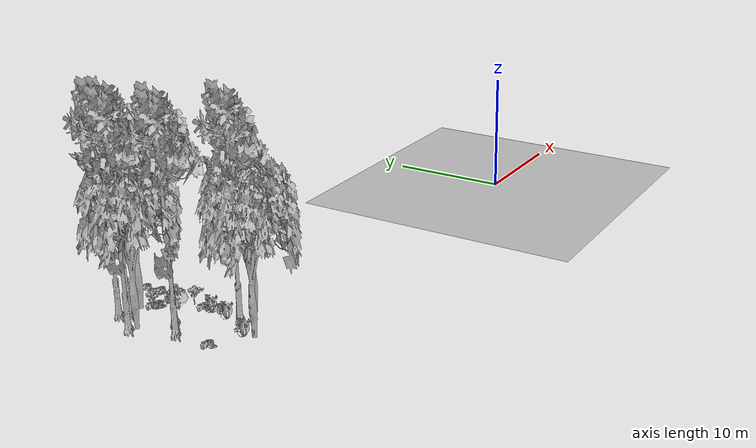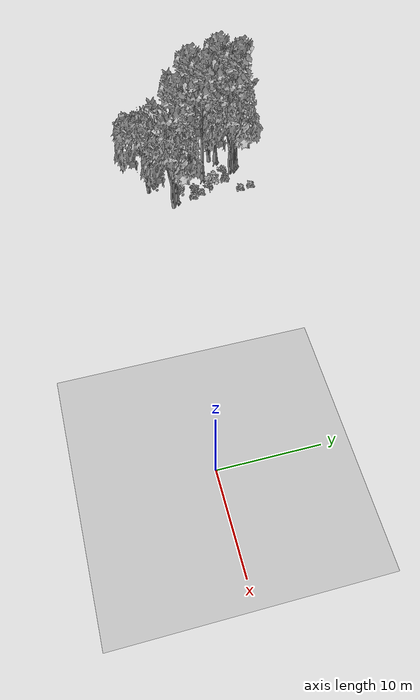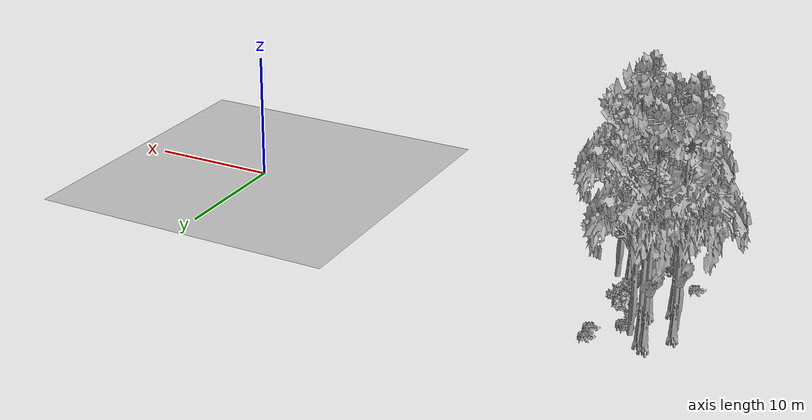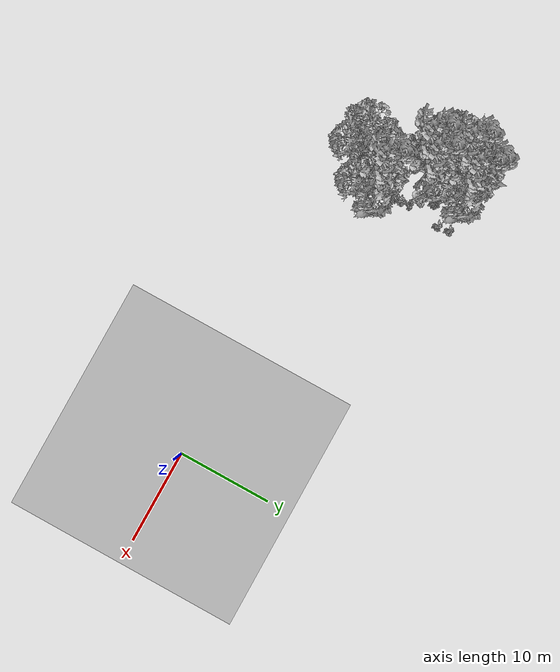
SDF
<sdf version="1.7">
 <world name="default">
  <model name="ground_plane">
   <static>1</static>
   <link name="link">
    <collision name="collision">
     <pose>-50 0 0 0 -0 0</pose>
     <geometry><plane><normal>0 0 1</normal><size>80 80</size></plane></geometry>
     <surface><contact><ode><min_depth>0.01</min_depth><max_vel>0</max_vel></ode></contact></surface>
    </collision>
    <visual name="grass">
     <cast_shadows>0</cast_shadows>
     <geometry>
      <mesh>
       <scale>0.46714285714285714 0.46714285714285714 0.1</scale>
       <uri>file://grass_plane/meshes/grass_plane.dae</uri>
      </mesh>
     </geometry>
    </visual>
   </link>
  </model>
  <model name="Tree 38">
   <static>1</static>
   <pose>-31.90999270987562 3.45453961454475 0 1.57079 -0 0</pose>
   <link name="link">
    <collision name="collision">
     <geometry><mesh><scale>3.5 5 3.5</scale><uri>model://tree_2/meshes/tree_2.obj</uri></mesh></geometry>
    </collision>
    <visual name="visual">
     <geometry><mesh><scale>3.5 5 3.5</scale><uri>model://tree_2/meshes/tree_2.obj</uri></mesh></geometry>
    </visual>
   </link>
  </model>
  <model name="Tree 90">
   <static>1</static>
   <pose>-36.157294848018374 11.546954036844703 0 1.57079 -0 0</pose>
   <link name="link">
    <collision name="collision">
     <geometry><mesh><scale>3.5 5 3.5</scale><uri>model://tree_9/meshes/tree_9.obj</uri></mesh></geometry>
    </collision>
    <visual name="visual">
     <geometry><mesh><scale>3.5 5 3.5</scale><uri>model://tree_9/meshes/tree_9.obj</uri></mesh></geometry>
    </visual>
   </link>
  </model>
  <model name="Tree 165">
   <static>1</static>
   <pose>-35.48497824722461 11.022575793147539 0 1.57079 -0 0</pose>
   <link name="link">
    <collision name="collision">
     <geometry><mesh><scale>3.5 5 3.5</scale><uri>model://tree_2/meshes/tree_2.obj</uri></mesh></geometry>
    </collision>
    <visual name="visual">
     <geometry><mesh><scale>3.5 5 3.5</scale><uri>model://tree_2/meshes/tree_2.obj</uri></mesh></geometry>
    </visual>
   </link>
  </model>
  <model name="Tree 172">
   <static>1</static>
   <pose>-36.82782391081586 6.583129557673729 0 1.57079 -0 0</pose>
   <link name="link">
    <collision name="collision">
     <geometry><mesh><scale>3.5 5 3.5</scale><uri>model://tree_9/meshes/tree_9.obj</uri></mesh></geometry>
    </collision>
    <visual name="visual">
     <geometry><mesh><scale>3.5 5 3.5</scale><uri>model://tree_9/meshes/tree_9.obj</uri></mesh></geometry>
    </visual>
   </link>
  </model>
  <model name="Tree 217">
   <static>1</static>
   <pose>-34.88779400687991 1.2137391682830483 0 1.57079 -0 0</pose>
   <link name="link">
    <collision name="collision">
     <geometry><mesh><scale>3.5 5 3.5</scale><uri>model://tree_2/meshes/tree_2.obj</uri></mesh></geometry>
    </collision>
    <visual name="visual">
     <geometry><mesh><scale>3.5 5 3.5</scale><uri>model://tree_2/meshes/tree_2.obj</uri></mesh></geometry>
    </visual>
   </link>
  </model>
  <model name="Tree 258">
   <static>1</static>
   <pose>-37.973167341716504 9.093760758897282 0 1.57079 -0 0</pose>
   <link name="link">
    <collision name="collision">
     <geometry><mesh><scale>3.5 5 3.5</scale><uri>model://tree_2/meshes/tree_2.obj</uri></mesh></geometry>
    </collision>
    <visual name="visual">
     <geometry><mesh><scale>3.5 5 3.5</scale><uri>model://tree_2/meshes/tree_2.obj</uri></mesh></geometry>
    </visual>
   </link>
  </model>
  <model name="Tree 325">
   <static>1</static>
   <pose>-35.541207736782546 7.756984135357605 0 1.57079 -0 0</pose>
   <link name="link">
    <collision name="collision">
     <geometry><mesh><scale>3.5 5 3.5</scale><uri>model://tree_9/meshes/tree_9.obj</uri></mesh></geometry>
    </collision>
    <visual name="visual">
     <geometry><mesh><scale>3.5 5 3.5</scale><uri>model://tree_9/meshes/tree_9.obj</uri></mesh></geometry>
    </visual>
   </link>
  </model>
  <model name="Tree 336">
   <static>1</static>
   <pose>-36.654256423285204 12.033409033437017 0 1.57079 -0 0</pose>
   <link name="link">
    <collision name="collision">
     <geometry><mesh><scale>3.5 5 3.5</scale><uri>model://tree_9/meshes/tree_9.obj</uri></mesh></geometry>
    </collision>
    <visual name="visual">
     <geometry><mesh><scale>3.5 5 3.5</scale><uri>model://tree_9/meshes/tree_9.obj</uri></mesh></geometry>
    </visual>
   </link>
  </model>
  <model name="Tree 577">
   <static>1</static>
   <pose>-32.84943593047465 4.0637081629017615 0 1.57079 -0 0</pose>
   <link name="link">
    <collision name="collision">
     <geometry><mesh><scale>3.5 5 3.5</scale><uri>model://tree_9/meshes/tree_9.obj</uri></mesh></geometry>
    </collision>
    <visual name="visual">
     <geometry><mesh><scale>3.5 5 3.5</scale><uri>model://tree_9/meshes/tree_9.obj</uri></mesh></geometry>
    </visual>
   </link>
  </model>
  <model name="Tree 592">
   <static>1</static>
   <pose>-37.943336159419424 9.913766005973784 0 1.57079 -0 0</pose>
   <link name="link">
    <collision name="collision">
     <geometry><mesh><scale>3.5 5 3.5</scale><uri>model://tree_9/meshes/tree_9.obj</uri></mesh></geometry>
    </collision>
    <visual name="visual">
     <geometry><mesh><scale>3.5 5 3.5</scale><uri>model://tree_9/meshes/tree_9.obj</uri></mesh></geometry>
    </visual>
   </link>
  </model>
  <model name="Bush 124">
   <static>1</static>
   <pose>-33.39738674514645 6.1826533414260325 0 1.57079 -0 0</pose>
   <link name="link">
    <collision name="collision">
     <geometry><mesh><scale>2 2 2</scale><uri>model://bush_4/meshes/bush_4.obj</uri></mesh></geometry>
     <surface><contact><collide_without_contact>false</collide_without_contact></contact></surface>
    </collision>
    <visual name="visual">
     <geometry><mesh><scale>2 2 2</scale><uri>model://bush_4/meshes/bush_4.obj</uri></mesh></geometry>
    </visual>
   </link>
  </model>
  <model name="Bush 125">
   <static>1</static>
   <pose>-34.26248608032563 8.470265130838385 0 1.57079 -0 0</pose>
   <link name="link">
    <collision name="collision">
     <geometry><mesh><scale>2 2 2</scale><uri>model://bush_1/meshes/bush_1.obj</uri></mesh></geometry>
     <surface><contact><collide_without_contact>false</collide_without_contact></contact></surface>
    </collision>
    <visual name="visual">
     <geometry><mesh><scale>2 2 2</scale><uri>model://bush_1/meshes/bush_1.obj</uri></mesh></geometry>
    </visual>
   </link>
  </model>
  <model name="Bush 146">
   <static>1</static>
   <pose>-33.27144420287954 7.002546705481194 0 1.57079 -0 0</pose>
   <link name="link">
    <collision name="collision">
     <geometry><mesh><scale>2 2 2</scale><uri>model://bush_2/meshes/bush_2.obj</uri></mesh></geometry>
     <surface><contact><collide_without_contact>false</collide_without_contact></contact></surface>
    </collision>
    <visual name="visual">
     <geometry><mesh><scale>2 2 2</scale><uri>model://bush_2/meshes/bush_2.obj</uri></mesh></geometry>
    </visual>
   </link>
  </model>
  <model name="Bush 159">
   <static>1</static>
   <pose>-37.48714730543258 3.1117663217154785 0 1.57079 -0 0</pose>
   <link name="link">
    <collision name="collision">
     <geometry><mesh><scale>2 2 2</scale><uri>model://bush_2/meshes/bush_2.obj</uri></mesh></geometry>
     <surface><contact><collide_without_contact>false</collide_without_contact></contact></surface>
    </collision>
    <visual name="visual">
     <geometry><mesh><scale>2 2 2</scale><uri>model://bush_2/meshes/bush_2.obj</uri></mesh></geometry>
    </visual>
   </link>
  </model>
  <model name="Bush 163">
   <static>1</static>
   <pose>-33.0564425375629 8.026745720699239 0 1.57079 -0 0</pose>
   <link name="link">
    <collision name="collision">
     <geometry><mesh><scale>2 2 2</scale><uri>model://bush_5/meshes/bush_5.obj</uri></mesh></geometry>
     <surface><contact><collide_without_contact>false</collide_without_contact></contact></surface>
    </collision>
    <visual name="visual">
     <geometry><mesh><scale>2 2 2</scale><uri>model://bush_5/meshes/bush_5.obj</uri></mesh></geometry>
    </visual>
   </link>
  </model>
  <model name="Bush 247">
   <static>1</static>
   <pose>-32.83450058459921 11.537960947290038 0 1.57079 -0 0</pose>
   <link name="link">
    <collision name="collision">
     <geometry><mesh><scale>2 2 2</scale><uri>model://bush_2/meshes/bush_2.obj</uri></mesh></geometry>
     <surface><contact><collide_without_contact>false</collide_without_contact></contact></surface>
    </collision>
    <visual name="visual">
     <geometry><mesh><scale>2 2 2</scale><uri>model://bush_2/meshes/bush_2.obj</uri></mesh></geometry>
    </visual>
   </link>
  </model>
  <model name="Bush 258">
   <static>1</static>
   <pose>-35.134373723823465 1.901291387444516 0 1.57079 -0 0</pose>
   <link name="link">
    <collision name="collision">
     <geometry><mesh><scale>2 2 2</scale><uri>model://bush_4/meshes/bush_4.obj</uri></mesh></geometry>
     <surface><contact><collide_without_contact>false</collide_without_contact></contact></surface>
    </collision>
    <visual name="visual">
     <geometry><mesh><scale>2 2 2</scale><uri>model://bush_4/meshes/bush_4.obj</uri></mesh></geometry>
    </visual>
   </link>
  </model>
  <model name="Bush 263">
   <static>1</static>
   <pose>-33.65786323724114 4.571393937866837 0 1.57079 -0 0</pose>
   <link name="link">
    <collision name="collision">
     <geometry><mesh><scale>2 2 2</scale><uri>model://bush_4/meshes/bush_4.obj</uri></mesh></geometry>
     <surface><contact><collide_without_contact>false</collide_without_contact></contact></surface>
    </collision>
    <visual name="visual">
     <geometry><mesh><scale>2 2 2</scale><uri>model://bush_4/meshes/bush_4.obj</uri></mesh></geometry>
    </visual>
   </link>
  </model>
  <model name="Bush 329">
   <static>1</static>
   <pose>-32.89977647295394 5.99324661479902 0 1.57079 -0 0</pose>
   <link name="link">
    <collision name="collision">
     <geometry><mesh><scale>2 2 2</scale><uri>model://bush_2/meshes/bush_2.obj</uri></mesh></geometry>
     <surface><contact><collide_without_contact>false</collide_without_contact></contact></surface>
    </collision>
    <visual name="visual">
     <geometry><mesh><scale>2 2 2</scale><uri>model://bush_2/meshes/bush_2.obj</uri></mesh></geometry>
    </visual>
   </link>
  </model>
  <model name="Bush 413">
   <static>1</static>
   <pose>-34.95169380551975 10.314535844514587 0 1.57079 -0 0</pose>
   <link name="link">
    <collision name="collision">
     <geometry><mesh><scale>2 2 2</scale><uri>model://bush_2/meshes/bush_2.obj</uri></mesh></geometry>
     <surface><contact><collide_without_contact>false</collide_without_contact></contact></surface>
    </collision>
    <visual name="visual">
     <geometry><mesh><scale>2 2 2</scale><uri>model://bush_2/meshes/bush_2.obj</uri></mesh></geometry>
    </visual>
   </link>
  </model>
  <model name="Bush 548">
   <static>1</static>
   <pose>-32.97674858603225 12.796473805743801 0 1.57079 -0 0</pose>
   <link name="link">
    <collision name="collision">
     <geometry><mesh><scale>2 2 2</scale><uri>model://bush_2/meshes/bush_2.obj</uri></mesh></geometry>
     <surface><contact><collide_without_contact>false</collide_without_contact></contact></surface>
    </collision>
    <visual name="visual">
     <geometry><mesh><scale>2 2 2</scale><uri>model://bush_2/meshes/bush_2.obj</uri></mesh></geometry>
    </visual>
   </link>
  </model>
  <model name="Bush 561">
   <static>1</static>
   <pose>-34.6220170351591 10.11555975737528 0 1.57079 -0 0</pose>
   <link name="link">
    <collision name="collision">
     <geometry><mesh><scale>2 2 2</scale><uri>model://bush_2/meshes/bush_2.obj</uri></mesh></geometry>
     <surface><contact><collide_without_contact>false</collide_without_contact></contact></surface>
    </collision>
    <visual name="visual">
     <geometry><mesh><scale>2 2 2</scale><uri>model://bush_2/meshes/bush_2.obj</uri></mesh></geometry>
    </visual>
   </link>
  </model>
  <model name="Bush 595">
   <static>1</static>
   <pose>-35.11117069583838 10.162817077171837 0 1.57079 -0 0</pose>
   <link name="link">
    <collision name="collision">
     <geometry><mesh><scale>2 2 2</scale><uri>model://bush_5/meshes/bush_5.obj</uri></mesh></geometry>
     <surface><contact><collide_without_contact>false</collide_without_contact></contact></surface>
    </collision>
    <visual name="visual">
     <geometry><mesh><scale>2 2 2</scale><uri>model://bush_5/meshes/bush_5.obj</uri></mesh></geometry>
    </visual>
   </link>
  </model>
 </world>
</sdf>
